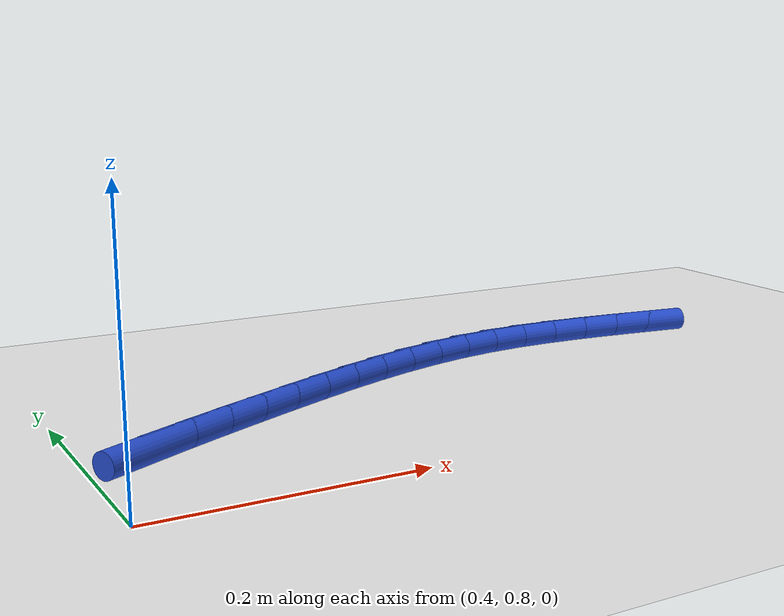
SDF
<sdf version="1.6">
 <world name="default">
  <model name="ground_plane">
   <static>1</static>
   <link name="link">
    <collision name="collision">
     <geometry><plane><normal>0 0 1</normal><size>100 100</size></plane></geometry>
     <surface><friction><ode><mu>100</mu><mu2>50</mu2></ode></friction></surface>
    </collision>
    <visual name="visual">
     <cast_shadows>0</cast_shadows>
     <geometry><plane><normal>0 0 1</normal><size>100 100</size></plane></geometry>
     <material>
      <script><uri>file://media/materials/scripts/gazebo.material</uri><name>Gazebo/WhiteGlow</name></script>
     </material>
    </visual>
   </link>
  </model>
  <model name="line">
   <link name="link_31">
    <pose>0.44225348214190274 0.8976513492791195 0.01 0 1.57 0.46779166946601</pose>
    <collision name="collision">
     <geometry><cylinder><radius>0.01</radius><length>0.08</length></cylinder></geometry>
    </collision>
    <visual name="visual">
     <material>
      <script><name>Gazebo/Blue</name><uri>file://media/materials/scripts/gazebo.material</uri></script>
     </material>
     <geometry><cylinder><radius>0.01</radius><length>0.08</length></cylinder></geometry>
    </visual>
   </link>
   <link name="link_32">
    <pose>0.4736840475416339 0.9135297836725152 0.01 0 1.57 0.44900126293869186</pose>
    <collision name="collision">
     <geometry><cylinder><radius>0.01</radius><length>0.08</length></cylinder></geometry>
    </collision>
    <visual name="visual">
     <material>
      <script><name>Gazebo/Blue</name><uri>file://media/materials/scripts/gazebo.material</uri></script>
     </material>
     <geometry><cylinder><radius>0.01</radius><length>0.08</length></cylinder></geometry>
    </visual>
   </link>
   <link name="link_33">
    <pose>0.5054849302814723 0.9288522082108248 0.01 0 1.57 0.4345061619689134</pose>
    <collision name="collision">
     <geometry><cylinder><radius>0.01</radius><length>0.08</length></cylinder></geometry>
    </collision>
    <visual name="visual">
     <material>
      <script><name>Gazebo/Blue</name><uri>file://media/materials/scripts/gazebo.material</uri></script>
     </material>
     <geometry><cylinder><radius>0.01</radius><length>0.08</length></cylinder></geometry>
    </visual>
   </link>
   <link name="link_34">
    <pose>0.5375030954502192 0.9437114004261964 0.01 0 1.57 0.42409030544996706</pose>
    <collision name="collision">
     <geometry><cylinder><radius>0.01</radius><length>0.08</length></cylinder></geometry>
    </collision>
    <visual name="visual">
     <material>
      <script><name>Gazebo/Blue</name><uri>file://media/materials/scripts/gazebo.material</uri></script>
     </material>
     <geometry><cylinder><radius>0.01</radius><length>0.08</length></cylinder></geometry>
    </visual>
   </link>
   <link name="link_35">
    <pose>0.5695870242857025 0.9581968956375084 0.01 0 1.57 0.412637379855925</pose>
    <collision name="collision">
     <geometry><cylinder><radius>0.01</radius><length>0.08</length></cylinder></geometry>
    </collision>
    <visual name="visual">
     <material>
      <script><name>Gazebo/Blue</name><uri>file://media/materials/scripts/gazebo.material</uri></script>
     </material>
     <geometry><cylinder><radius>0.01</radius><length>0.08</length></cylinder></geometry>
    </visual>
   </link>
   <link name="link_36">
    <pose>0.6016603002611548 0.9722376265711373 0.01 0 1.57 0.3926946823154604</pose>
    <collision name="collision">
     <geometry><cylinder><radius>0.01</radius><length>0.08</length></cylinder></geometry>
    </collision>
    <visual name="visual">
     <material>
      <script><name>Gazebo/Blue</name><uri>file://media/materials/scripts/gazebo.material</uri></script>
     </material>
     <geometry><cylinder><radius>0.01</radius><length>0.08</length></cylinder></geometry>
    </visual>
   </link>
   <link name="link_37">
    <pose>0.6337546072340434 0.9855313583741586 0.01 0 1.57 0.36335069937466385</pose>
    <collision name="collision">
     <geometry><cylinder><radius>0.01</radius><length>0.08</length></cylinder></geometry>
    </collision>
    <visual name="visual">
     <material>
      <script><name>Gazebo/Blue</name><uri>file://media/materials/scripts/gazebo.material</uri></script>
     </material>
     <geometry><cylinder><radius>0.01</radius><length>0.08</length></cylinder></geometry>
    </visual>
   </link>
   <link name="link_38">
    <pose>0.665910020502345 0.9977579114934229 0.01 0 1.57 0.3241759028659427</pose>
    <collision name="collision">
     <geometry><cylinder><radius>0.01</radius><length>0.08</length></cylinder></geometry>
    </collision>
    <visual name="visual">
     <material>
      <script><name>Gazebo/Blue</name><uri>file://media/materials/scripts/gazebo.material</uri></script>
     </material>
     <geometry><cylinder><radius>0.01</radius><length>0.08</length></cylinder></geometry>
    </visual>
   </link>
   <link name="link_39">
    <pose>0.6981666153640363 1.0085971063757786 0.01 0 1.57 0.27473260615598905</pose>
    <collision name="collision">
     <geometry><cylinder><radius>0.01</radius><length>0.08</length></cylinder></geometry>
    </collision>
    <visual name="visual">
     <material>
      <script><name>Gazebo/Blue</name><uri>file://media/materials/scripts/gazebo.material</uri></script>
     </material>
     <geometry><cylinder><radius>0.01</radius><length>0.08</length></cylinder></geometry>
    </visual>
   </link>
   <link name="link_40">
    <pose>0.7305644671170941 1.0177287634680758 0.01 0 1.57 0.2146909953033992</pose>
    <collision name="collision">
     <geometry><cylinder><radius>0.01</radius><length>0.08</length></cylinder></geometry>
    </collision>
    <visual name="visual">
     <material>
      <script><name>Gazebo/Blue</name><uri>file://media/materials/scripts/gazebo.material</uri></script>
     </material>
     <geometry><cylinder><radius>0.01</radius><length>0.08</length></cylinder></geometry>
    </visual>
   </link>
   <link name="link_41">
    <pose>0.7631436510594952 1.0248327032171642 0.01 0 1.57 0.14399514060104668</pose>
    <collision name="collision">
     <geometry><cylinder><radius>0.01</radius><length>0.08</length></cylinder></geometry>
    </collision>
    <visual name="visual">
     <material>
      <script><name>Gazebo/Blue</name><uri>file://media/materials/scripts/gazebo.material</uri></script>
     </material>
     <geometry><cylinder><radius>0.01</radius><length>0.08</length></cylinder></geometry>
    </visual>
   </link>
   <link name="link_42">
    <pose>0.7959442424892157 1.0295887460698931 0.01 0 1.57 0.06546857079153841</pose>
    <collision name="collision">
     <geometry><cylinder><radius>0.01</radius><length>0.08</length></cylinder></geometry>
    </collision>
    <visual name="visual">
     <material>
      <script><name>Gazebo/Blue</name><uri>file://media/materials/scripts/gazebo.material</uri></script>
     </material>
     <geometry><cylinder><radius>0.01</radius><length>0.08</length></cylinder></geometry>
    </visual>
   </link>
   <link name="link_43">
    <pose>0.8289994796551866 1.0317559223585735 0.01 0 1.57 -0.004415462437230972</pose>
    <collision name="collision">
     <geometry><cylinder><radius>0.01</radius><length>0.08</length></cylinder></geometry>
    </collision>
    <visual name="visual">
     <material>
      <script><name>Gazebo/Blue</name><uri>file://media/materials/scripts/gazebo.material</uri></script>
     </material>
     <geometry><cylinder><radius>0.01</radius><length>0.08</length></cylinder></geometry>
    </visual>
   </link>
   <link name="link_44">
    <pose>0.8622980938739451 1.0316088926227651 0.01 0 1.57 -0.05901914920225609</pose>
    <collision name="collision">
     <geometry><cylinder><radius>0.01</radius><length>0.08</length></cylinder></geometry>
    </collision>
    <visual name="visual">
     <material>
      <script><name>Gazebo/Blue</name><uri>file://media/materials/scripts/gazebo.material</uri></script>
     </material>
     <geometry><cylinder><radius>0.01</radius><length>0.08</length></cylinder></geometry>
    </visual>
   </link>
   <link name="link_45">
    <pose>0.8958110033300841 1.0296286894978557 0.01 0 1.57 -0.09855171799333817</pose>
    <collision name="collision">
     <geometry><cylinder><radius>0.01</radius><length>0.08</length></cylinder></geometry>
    </collision>
    <visual name="visual">
     <material>
      <script><name>Gazebo/Blue</name><uri>file://media/materials/scripts/gazebo.material</uri></script>
     </material>
     <geometry><cylinder><radius>0.01</radius><length>0.08</length></cylinder></geometry>
    </visual>
   </link>
   <link name="link_46">
    <pose>0.9295090789925875 1.0262968926305158 0.01 0 1.57 -0.12348374062670416</pose>
    <collision name="collision">
     <geometry><cylinder><radius>0.01</radius><length>0.08</length></cylinder></geometry>
    </collision>
    <visual name="visual">
     <material>
      <script><name>Gazebo/Blue</name><uri>file://media/materials/scripts/gazebo.material</uri></script>
     </material>
     <geometry><cylinder><radius>0.01</radius><length>0.08</length></cylinder></geometry>
    </visual>
   </link>
   <link name="link_47">
    <pose>0.9633631918304394 1.0220950816674175 0.01 0 1.57 -0.13426987021979914</pose>
    <collision name="collision">
     <geometry><cylinder><radius>0.01</radius><length>0.08</length></cylinder></geometry>
    </collision>
    <visual name="visual">
     <material>
      <script><name>Gazebo/Blue</name><uri>file://media/materials/scripts/gazebo.material</uri></script>
     </material>
     <geometry><cylinder><radius>0.01</radius><length>0.08</length></cylinder></geometry>
    </visual>
   </link>
  </model>
 </world>
</sdf>
